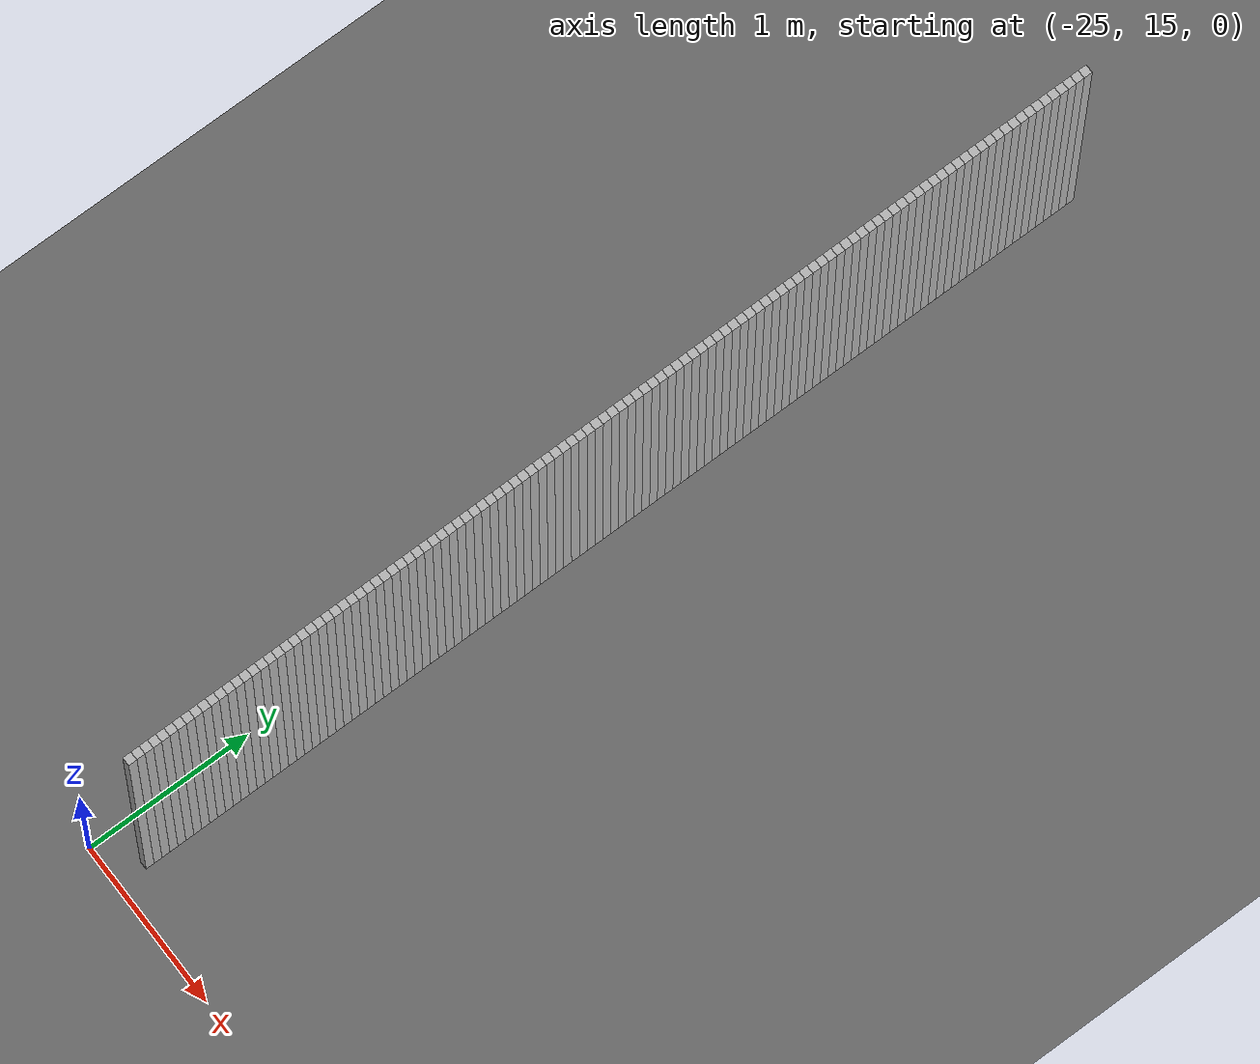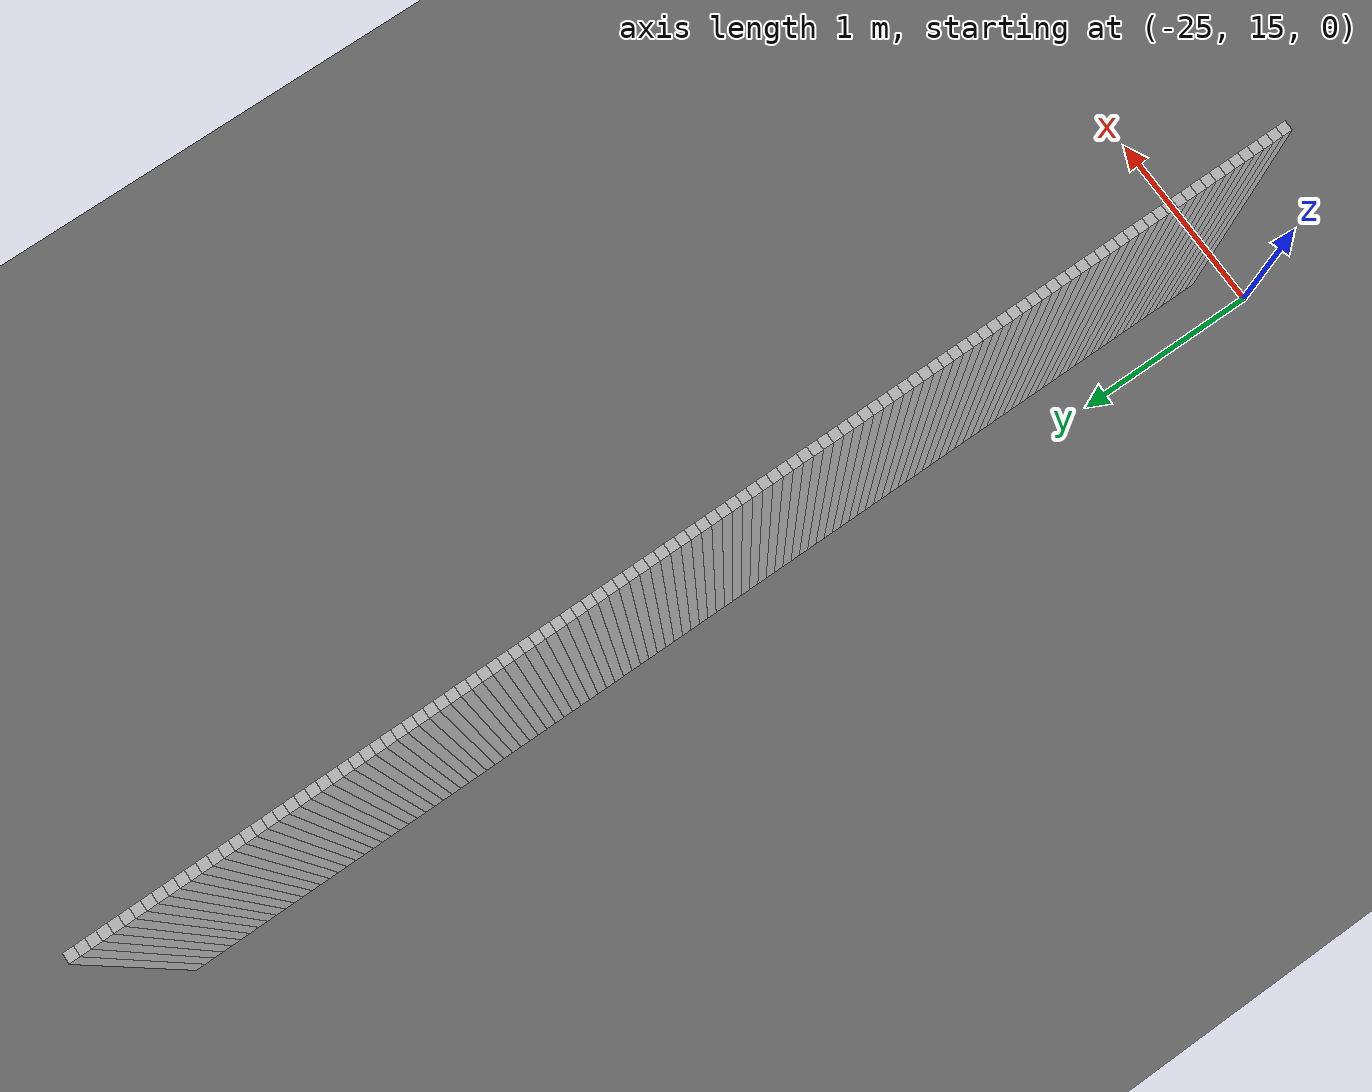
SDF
<sdf version="1.8">
 <world name="real_map">
  <model name="ground">
   <static>true</static>
   <link name="l">
    <collision name="c"><geometry><plane><normal>0 0 1</normal><size>100 100</size></plane></geometry></collision>
    <visual name="v">
     <geometry><plane><normal>0 0 1</normal><size>100 100</size></plane></geometry>
     <material><ambient>0.3 0.3 0.3 1</ambient><diffuse>0.4 0.4 0.4 1</diffuse></material>
    </visual>
   </link>
  </model>
  <model name="walls">
   <static>true</static>
   <link name="w1">
    <pose>-24.766 21.092 1.000 0 0 0</pose>
    <collision name="c"><geometry><box><size>0.050 0.050 2.000</size></box></geometry></collision>
    <visual name="v">
     <geometry><box><size>0.050 0.050 2.000</size></box></geometry>
     <material><ambient>0.7 0.7 0.7 1</ambient><diffuse>0.7 0.7 0.7 1</diffuse></material>
    </visual>
   </link>
   <link name="w3">
    <pose>-24.766 21.042 1.000 0 0 0</pose>
    <collision name="c"><geometry><box><size>0.050 0.050 2.000</size></box></geometry></collision>
    <visual name="v">
     <geometry><box><size>0.050 0.050 2.000</size></box></geometry>
     <material><ambient>0.7 0.7 0.7 1</ambient><diffuse>0.7 0.7 0.7 1</diffuse></material>
    </visual>
   </link>
   <link name="w5">
    <pose>-24.766 20.992 1.000 0 0 0</pose>
    <collision name="c"><geometry><box><size>0.050 0.050 2.000</size></box></geometry></collision>
    <visual name="v">
     <geometry><box><size>0.050 0.050 2.000</size></box></geometry>
     <material><ambient>0.7 0.7 0.7 1</ambient><diffuse>0.7 0.7 0.7 1</diffuse></material>
    </visual>
   </link>
   <link name="w7">
    <pose>-24.766 20.942 1.000 0 0 0</pose>
    <collision name="c"><geometry><box><size>0.050 0.050 2.000</size></box></geometry></collision>
    <visual name="v">
     <geometry><box><size>0.050 0.050 2.000</size></box></geometry>
     <material><ambient>0.7 0.7 0.7 1</ambient><diffuse>0.7 0.7 0.7 1</diffuse></material>
    </visual>
   </link>
   <link name="w9">
    <pose>-24.766 20.892 1.000 0 0 0</pose>
    <collision name="c"><geometry><box><size>0.050 0.050 2.000</size></box></geometry></collision>
    <visual name="v">
     <geometry><box><size>0.050 0.050 2.000</size></box></geometry>
     <material><ambient>0.7 0.7 0.7 1</ambient><diffuse>0.7 0.7 0.7 1</diffuse></material>
    </visual>
   </link>
   <link name="w11">
    <pose>-24.766 20.842 1.000 0 0 0</pose>
    <collision name="c"><geometry><box><size>0.050 0.050 2.000</size></box></geometry></collision>
    <visual name="v">
     <geometry><box><size>0.050 0.050 2.000</size></box></geometry>
     <material><ambient>0.7 0.7 0.7 1</ambient><diffuse>0.7 0.7 0.7 1</diffuse></material>
    </visual>
   </link>
   <link name="w13">
    <pose>-24.766 20.792 1.000 0 0 0</pose>
    <collision name="c"><geometry><box><size>0.050 0.050 2.000</size></box></geometry></collision>
    <visual name="v">
     <geometry><box><size>0.050 0.050 2.000</size></box></geometry>
     <material><ambient>0.7 0.7 0.7 1</ambient><diffuse>0.7 0.7 0.7 1</diffuse></material>
    </visual>
   </link>
   <link name="w15">
    <pose>-24.766 20.742 1.000 0 0 0</pose>
    <collision name="c"><geometry><box><size>0.050 0.050 2.000</size></box></geometry></collision>
    <visual name="v">
     <geometry><box><size>0.050 0.050 2.000</size></box></geometry>
     <material><ambient>0.7 0.7 0.7 1</ambient><diffuse>0.7 0.7 0.7 1</diffuse></material>
    </visual>
   </link>
   <link name="w17">
    <pose>-24.766 20.692 1.000 0 0 0</pose>
    <collision name="c"><geometry><box><size>0.050 0.050 2.000</size></box></geometry></collision>
    <visual name="v">
     <geometry><box><size>0.050 0.050 2.000</size></box></geometry>
     <material><ambient>0.7 0.7 0.7 1</ambient><diffuse>0.7 0.7 0.7 1</diffuse></material>
    </visual>
   </link>
   <link name="w19">
    <pose>-24.766 20.642 1.000 0 0 0</pose>
    <collision name="c"><geometry><box><size>0.050 0.050 2.000</size></box></geometry></collision>
    <visual name="v">
     <geometry><box><size>0.050 0.050 2.000</size></box></geometry>
     <material><ambient>0.7 0.7 0.7 1</ambient><diffuse>0.7 0.7 0.7 1</diffuse></material>
    </visual>
   </link>
   <link name="w21">
    <pose>-24.766 20.592 1.000 0 0 0</pose>
    <collision name="c"><geometry><box><size>0.050 0.050 2.000</size></box></geometry></collision>
    <visual name="v">
     <geometry><box><size>0.050 0.050 2.000</size></box></geometry>
     <material><ambient>0.7 0.7 0.7 1</ambient><diffuse>0.7 0.7 0.7 1</diffuse></material>
    </visual>
   </link>
   <link name="w23">
    <pose>-24.766 20.542 1.000 0 0 0</pose>
    <collision name="c"><geometry><box><size>0.050 0.050 2.000</size></box></geometry></collision>
    <visual name="v">
     <geometry><box><size>0.050 0.050 2.000</size></box></geometry>
     <material><ambient>0.7 0.7 0.7 1</ambient><diffuse>0.7 0.7 0.7 1</diffuse></material>
    </visual>
   </link>
   <link name="w25">
    <pose>-24.766 20.492 1.000 0 0 0</pose>
    <collision name="c"><geometry><box><size>0.050 0.050 2.000</size></box></geometry></collision>
    <visual name="v">
     <geometry><box><size>0.050 0.050 2.000</size></box></geometry>
     <material><ambient>0.7 0.7 0.7 1</ambient><diffuse>0.7 0.7 0.7 1</diffuse></material>
    </visual>
   </link>
   <link name="w27">
    <pose>-24.766 20.442 1.000 0 0 0</pose>
    <collision name="c"><geometry><box><size>0.050 0.050 2.000</size></box></geometry></collision>
    <visual name="v">
     <geometry><box><size>0.050 0.050 2.000</size></box></geometry>
     <material><ambient>0.7 0.7 0.7 1</ambient><diffuse>0.7 0.7 0.7 1</diffuse></material>
    </visual>
   </link>
   <link name="w29">
    <pose>-24.766 20.392 1.000 0 0 0</pose>
    <collision name="c"><geometry><box><size>0.050 0.050 2.000</size></box></geometry></collision>
    <visual name="v">
     <geometry><box><size>0.050 0.050 2.000</size></box></geometry>
     <material><ambient>0.7 0.7 0.7 1</ambient><diffuse>0.7 0.7 0.7 1</diffuse></material>
    </visual>
   </link>
   <link name="w31">
    <pose>-24.766 20.342 1.000 0 0 0</pose>
    <collision name="c"><geometry><box><size>0.050 0.050 2.000</size></box></geometry></collision>
    <visual name="v">
     <geometry><box><size>0.050 0.050 2.000</size></box></geometry>
     <material><ambient>0.7 0.7 0.7 1</ambient><diffuse>0.7 0.7 0.7 1</diffuse></material>
    </visual>
   </link>
   <link name="w33">
    <pose>-24.766 20.292 1.000 0 0 0</pose>
    <collision name="c"><geometry><box><size>0.050 0.050 2.000</size></box></geometry></collision>
    <visual name="v">
     <geometry><box><size>0.050 0.050 2.000</size></box></geometry>
     <material><ambient>0.7 0.7 0.7 1</ambient><diffuse>0.7 0.7 0.7 1</diffuse></material>
    </visual>
   </link>
   <link name="w35">
    <pose>-24.766 20.242 1.000 0 0 0</pose>
    <collision name="c"><geometry><box><size>0.050 0.050 2.000</size></box></geometry></collision>
    <visual name="v">
     <geometry><box><size>0.050 0.050 2.000</size></box></geometry>
     <material><ambient>0.7 0.7 0.7 1</ambient><diffuse>0.7 0.7 0.7 1</diffuse></material>
    </visual>
   </link>
   <link name="w37">
    <pose>-24.766 20.192 1.000 0 0 0</pose>
    <collision name="c"><geometry><box><size>0.050 0.050 2.000</size></box></geometry></collision>
    <visual name="v">
     <geometry><box><size>0.050 0.050 2.000</size></box></geometry>
     <material><ambient>0.7 0.7 0.7 1</ambient><diffuse>0.7 0.7 0.7 1</diffuse></material>
    </visual>
   </link>
   <link name="w39">
    <pose>-24.766 20.142 1.000 0 0 0</pose>
    <collision name="c"><geometry><box><size>0.050 0.050 2.000</size></box></geometry></collision>
    <visual name="v">
     <geometry><box><size>0.050 0.050 2.000</size></box></geometry>
     <material><ambient>0.7 0.7 0.7 1</ambient><diffuse>0.7 0.7 0.7 1</diffuse></material>
    </visual>
   </link>
   <link name="w41">
    <pose>-24.766 20.092 1.000 0 0 0</pose>
    <collision name="c"><geometry><box><size>0.050 0.050 2.000</size></box></geometry></collision>
    <visual name="v">
     <geometry><box><size>0.050 0.050 2.000</size></box></geometry>
     <material><ambient>0.7 0.7 0.7 1</ambient><diffuse>0.7 0.7 0.7 1</diffuse></material>
    </visual>
   </link>
   <link name="w43">
    <pose>-24.766 20.042 1.000 0 0 0</pose>
    <collision name="c"><geometry><box><size>0.050 0.050 2.000</size></box></geometry></collision>
    <visual name="v">
     <geometry><box><size>0.050 0.050 2.000</size></box></geometry>
     <material><ambient>0.7 0.7 0.7 1</ambient><diffuse>0.7 0.7 0.7 1</diffuse></material>
    </visual>
   </link>
   <link name="w45">
    <pose>-24.766 19.992 1.000 0 0 0</pose>
    <collision name="c"><geometry><box><size>0.050 0.050 2.000</size></box></geometry></collision>
    <visual name="v">
     <geometry><box><size>0.050 0.050 2.000</size></box></geometry>
     <material><ambient>0.7 0.7 0.7 1</ambient><diffuse>0.7 0.7 0.7 1</diffuse></material>
    </visual>
   </link>
   <link name="w47">
    <pose>-24.766 19.942 1.000 0 0 0</pose>
    <collision name="c"><geometry><box><size>0.050 0.050 2.000</size></box></geometry></collision>
    <visual name="v">
     <geometry><box><size>0.050 0.050 2.000</size></box></geometry>
     <material><ambient>0.7 0.7 0.7 1</ambient><diffuse>0.7 0.7 0.7 1</diffuse></material>
    </visual>
   </link>
   <link name="w49">
    <pose>-24.766 19.892 1.000 0 0 0</pose>
    <collision name="c"><geometry><box><size>0.050 0.050 2.000</size></box></geometry></collision>
    <visual name="v">
     <geometry><box><size>0.050 0.050 2.000</size></box></geometry>
     <material><ambient>0.7 0.7 0.7 1</ambient><diffuse>0.7 0.7 0.7 1</diffuse></material>
    </visual>
   </link>
   <link name="w51">
    <pose>-24.766 19.842 1.000 0 0 0</pose>
    <collision name="c"><geometry><box><size>0.050 0.050 2.000</size></box></geometry></collision>
    <visual name="v">
     <geometry><box><size>0.050 0.050 2.000</size></box></geometry>
     <material><ambient>0.7 0.7 0.7 1</ambient><diffuse>0.7 0.7 0.7 1</diffuse></material>
    </visual>
   </link>
   <link name="w53">
    <pose>-24.766 19.792 1.000 0 0 0</pose>
    <collision name="c"><geometry><box><size>0.050 0.050 2.000</size></box></geometry></collision>
    <visual name="v">
     <geometry><box><size>0.050 0.050 2.000</size></box></geometry>
     <material><ambient>0.7 0.7 0.7 1</ambient><diffuse>0.7 0.7 0.7 1</diffuse></material>
    </visual>
   </link>
   <link name="w55">
    <pose>-24.766 19.742 1.000 0 0 0</pose>
    <collision name="c"><geometry><box><size>0.050 0.050 2.000</size></box></geometry></collision>
    <visual name="v">
     <geometry><box><size>0.050 0.050 2.000</size></box></geometry>
     <material><ambient>0.7 0.7 0.7 1</ambient><diffuse>0.7 0.7 0.7 1</diffuse></material>
    </visual>
   </link>
   <link name="w57">
    <pose>-24.766 19.692 1.000 0 0 0</pose>
    <collision name="c"><geometry><box><size>0.050 0.050 2.000</size></box></geometry></collision>
    <visual name="v">
     <geometry><box><size>0.050 0.050 2.000</size></box></geometry>
     <material><ambient>0.7 0.7 0.7 1</ambient><diffuse>0.7 0.7 0.7 1</diffuse></material>
    </visual>
   </link>
   <link name="w59">
    <pose>-24.766 19.642 1.000 0 0 0</pose>
    <collision name="c"><geometry><box><size>0.050 0.050 2.000</size></box></geometry></collision>
    <visual name="v">
     <geometry><box><size>0.050 0.050 2.000</size></box></geometry>
     <material><ambient>0.7 0.7 0.7 1</ambient><diffuse>0.7 0.7 0.7 1</diffuse></material>
    </visual>
   </link>
   <link name="w61">
    <pose>-24.766 19.592 1.000 0 0 0</pose>
    <collision name="c"><geometry><box><size>0.050 0.050 2.000</size></box></geometry></collision>
    <visual name="v">
     <geometry><box><size>0.050 0.050 2.000</size></box></geometry>
     <material><ambient>0.7 0.7 0.7 1</ambient><diffuse>0.7 0.7 0.7 1</diffuse></material>
    </visual>
   </link>
   <link name="w63">
    <pose>-24.766 19.542 1.000 0 0 0</pose>
    <collision name="c"><geometry><box><size>0.050 0.050 2.000</size></box></geometry></collision>
    <visual name="v">
     <geometry><box><size>0.050 0.050 2.000</size></box></geometry>
     <material><ambient>0.7 0.7 0.7 1</ambient><diffuse>0.7 0.7 0.7 1</diffuse></material>
    </visual>
   </link>
   <link name="w65">
    <pose>-24.766 19.492 1.000 0 0 0</pose>
    <collision name="c"><geometry><box><size>0.050 0.050 2.000</size></box></geometry></collision>
    <visual name="v">
     <geometry><box><size>0.050 0.050 2.000</size></box></geometry>
     <material><ambient>0.7 0.7 0.7 1</ambient><diffuse>0.7 0.7 0.7 1</diffuse></material>
    </visual>
   </link>
   <link name="w67">
    <pose>-24.766 19.442 1.000 0 0 0</pose>
    <collision name="c"><geometry><box><size>0.050 0.050 2.000</size></box></geometry></collision>
    <visual name="v">
     <geometry><box><size>0.050 0.050 2.000</size></box></geometry>
     <material><ambient>0.7 0.7 0.7 1</ambient><diffuse>0.7 0.7 0.7 1</diffuse></material>
    </visual>
   </link>
   <link name="w69">
    <pose>-24.766 19.392 1.000 0 0 0</pose>
    <collision name="c"><geometry><box><size>0.050 0.050 2.000</size></box></geometry></collision>
    <visual name="v">
     <geometry><box><size>0.050 0.050 2.000</size></box></geometry>
     <material><ambient>0.7 0.7 0.7 1</ambient><diffuse>0.7 0.7 0.7 1</diffuse></material>
    </visual>
   </link>
   <link name="w71">
    <pose>-24.766 19.342 1.000 0 0 0</pose>
    <collision name="c"><geometry><box><size>0.050 0.050 2.000</size></box></geometry></collision>
    <visual name="v">
     <geometry><box><size>0.050 0.050 2.000</size></box></geometry>
     <material><ambient>0.7 0.7 0.7 1</ambient><diffuse>0.7 0.7 0.7 1</diffuse></material>
    </visual>
   </link>
   <link name="w73">
    <pose>-24.766 19.292 1.000 0 0 0</pose>
    <collision name="c"><geometry><box><size>0.050 0.050 2.000</size></box></geometry></collision>
    <visual name="v">
     <geometry><box><size>0.050 0.050 2.000</size></box></geometry>
     <material><ambient>0.7 0.7 0.7 1</ambient><diffuse>0.7 0.7 0.7 1</diffuse></material>
    </visual>
   </link>
   <link name="w75">
    <pose>-24.766 19.242 1.000 0 0 0</pose>
    <collision name="c"><geometry><box><size>0.050 0.050 2.000</size></box></geometry></collision>
    <visual name="v">
     <geometry><box><size>0.050 0.050 2.000</size></box></geometry>
     <material><ambient>0.7 0.7 0.7 1</ambient><diffuse>0.7 0.7 0.7 1</diffuse></material>
    </visual>
   </link>
   <link name="w77">
    <pose>-24.766 19.192 1.000 0 0 0</pose>
    <collision name="c"><geometry><box><size>0.050 0.050 2.000</size></box></geometry></collision>
    <visual name="v">
     <geometry><box><size>0.050 0.050 2.000</size></box></geometry>
     <material><ambient>0.7 0.7 0.7 1</ambient><diffuse>0.7 0.7 0.7 1</diffuse></material>
    </visual>
   </link>
   <link name="w79">
    <pose>-24.766 19.142 1.000 0 0 0</pose>
    <collision name="c"><geometry><box><size>0.050 0.050 2.000</size></box></geometry></collision>
    <visual name="v">
     <geometry><box><size>0.050 0.050 2.000</size></box></geometry>
     <material><ambient>0.7 0.7 0.7 1</ambient><diffuse>0.7 0.7 0.7 1</diffuse></material>
    </visual>
   </link>
   <link name="w81">
    <pose>-24.766 19.092 1.000 0 0 0</pose>
    <collision name="c"><geometry><box><size>0.050 0.050 2.000</size></box></geometry></collision>
    <visual name="v">
     <geometry><box><size>0.050 0.050 2.000</size></box></geometry>
     <material><ambient>0.7 0.7 0.7 1</ambient><diffuse>0.7 0.7 0.7 1</diffuse></material>
    </visual>
   </link>
   <link name="w83">
    <pose>-24.766 19.042 1.000 0 0 0</pose>
    <collision name="c"><geometry><box><size>0.050 0.050 2.000</size></box></geometry></collision>
    <visual name="v">
     <geometry><box><size>0.050 0.050 2.000</size></box></geometry>
     <material><ambient>0.7 0.7 0.7 1</ambient><diffuse>0.7 0.7 0.7 1</diffuse></material>
    </visual>
   </link>
   <link name="w85">
    <pose>-24.766 18.992 1.000 0 0 0</pose>
    <collision name="c"><geometry><box><size>0.050 0.050 2.000</size></box></geometry></collision>
    <visual name="v">
     <geometry><box><size>0.050 0.050 2.000</size></box></geometry>
     <material><ambient>0.7 0.7 0.7 1</ambient><diffuse>0.7 0.7 0.7 1</diffuse></material>
    </visual>
   </link>
   <link name="w87">
    <pose>-24.766 18.942 1.000 0 0 0</pose>
    <collision name="c"><geometry><box><size>0.050 0.050 2.000</size></box></geometry></collision>
    <visual name="v">
     <geometry><box><size>0.050 0.050 2.000</size></box></geometry>
     <material><ambient>0.7 0.7 0.7 1</ambient><diffuse>0.7 0.7 0.7 1</diffuse></material>
    </visual>
   </link>
   <link name="w89">
    <pose>-24.766 18.892 1.000 0 0 0</pose>
    <collision name="c"><geometry><box><size>0.050 0.050 2.000</size></box></geometry></collision>
    <visual name="v">
     <geometry><box><size>0.050 0.050 2.000</size></box></geometry>
     <material><ambient>0.7 0.7 0.7 1</ambient><diffuse>0.7 0.7 0.7 1</diffuse></material>
    </visual>
   </link>
   <link name="w91">
    <pose>-24.766 18.842 1.000 0 0 0</pose>
    <collision name="c"><geometry><box><size>0.050 0.050 2.000</size></box></geometry></collision>
    <visual name="v">
     <geometry><box><size>0.050 0.050 2.000</size></box></geometry>
     <material><ambient>0.7 0.7 0.7 1</ambient><diffuse>0.7 0.7 0.7 1</diffuse></material>
    </visual>
   </link>
   <link name="w93">
    <pose>-24.766 18.792 1.000 0 0 0</pose>
    <collision name="c"><geometry><box><size>0.050 0.050 2.000</size></box></geometry></collision>
    <visual name="v">
     <geometry><box><size>0.050 0.050 2.000</size></box></geometry>
     <material><ambient>0.7 0.7 0.7 1</ambient><diffuse>0.7 0.7 0.7 1</diffuse></material>
    </visual>
   </link>
   <link name="w95">
    <pose>-24.766 18.742 1.000 0 0 0</pose>
    <collision name="c"><geometry><box><size>0.050 0.050 2.000</size></box></geometry></collision>
    <visual name="v">
     <geometry><box><size>0.050 0.050 2.000</size></box></geometry>
     <material><ambient>0.7 0.7 0.7 1</ambient><diffuse>0.7 0.7 0.7 1</diffuse></material>
    </visual>
   </link>
   <link name="w97">
    <pose>-24.766 18.692 1.000 0 0 0</pose>
    <collision name="c"><geometry><box><size>0.050 0.050 2.000</size></box></geometry></collision>
    <visual name="v">
     <geometry><box><size>0.050 0.050 2.000</size></box></geometry>
     <material><ambient>0.7 0.7 0.7 1</ambient><diffuse>0.7 0.7 0.7 1</diffuse></material>
    </visual>
   </link>
   <link name="w99">
    <pose>-24.766 18.642 1.000 0 0 0</pose>
    <collision name="c"><geometry><box><size>0.050 0.050 2.000</size></box></geometry></collision>
    <visual name="v">
     <geometry><box><size>0.050 0.050 2.000</size></box></geometry>
     <material><ambient>0.7 0.7 0.7 1</ambient><diffuse>0.7 0.7 0.7 1</diffuse></material>
    </visual>
   </link>
   <link name="w101">
    <pose>-24.766 18.592 1.000 0 0 0</pose>
    <collision name="c"><geometry><box><size>0.050 0.050 2.000</size></box></geometry></collision>
    <visual name="v">
     <geometry><box><size>0.050 0.050 2.000</size></box></geometry>
     <material><ambient>0.7 0.7 0.7 1</ambient><diffuse>0.7 0.7 0.7 1</diffuse></material>
    </visual>
   </link>
   <link name="w103">
    <pose>-24.766 18.542 1.000 0 0 0</pose>
    <collision name="c"><geometry><box><size>0.050 0.050 2.000</size></box></geometry></collision>
    <visual name="v">
     <geometry><box><size>0.050 0.050 2.000</size></box></geometry>
     <material><ambient>0.7 0.7 0.7 1</ambient><diffuse>0.7 0.7 0.7 1</diffuse></material>
    </visual>
   </link>
   <link name="w105">
    <pose>-24.766 18.492 1.000 0 0 0</pose>
    <collision name="c"><geometry><box><size>0.050 0.050 2.000</size></box></geometry></collision>
    <visual name="v">
     <geometry><box><size>0.050 0.050 2.000</size></box></geometry>
     <material><ambient>0.7 0.7 0.7 1</ambient><diffuse>0.7 0.7 0.7 1</diffuse></material>
    </visual>
   </link>
   <link name="w107">
    <pose>-24.766 18.442 1.000 0 0 0</pose>
    <collision name="c"><geometry><box><size>0.050 0.050 2.000</size></box></geometry></collision>
    <visual name="v">
     <geometry><box><size>0.050 0.050 2.000</size></box></geometry>
     <material><ambient>0.7 0.7 0.7 1</ambient><diffuse>0.7 0.7 0.7 1</diffuse></material>
    </visual>
   </link>
   <link name="w109">
    <pose>-24.766 18.392 1.000 0 0 0</pose>
    <collision name="c"><geometry><box><size>0.050 0.050 2.000</size></box></geometry></collision>
    <visual name="v">
     <geometry><box><size>0.050 0.050 2.000</size></box></geometry>
     <material><ambient>0.7 0.7 0.7 1</ambient><diffuse>0.7 0.7 0.7 1</diffuse></material>
    </visual>
   </link>
   <link name="w111">
    <pose>-24.766 18.342 1.000 0 0 0</pose>
    <collision name="c"><geometry><box><size>0.050 0.050 2.000</size></box></geometry></collision>
    <visual name="v">
     <geometry><box><size>0.050 0.050 2.000</size></box></geometry>
     <material><ambient>0.7 0.7 0.7 1</ambient><diffuse>0.7 0.7 0.7 1</diffuse></material>
    </visual>
   </link>
   <link name="w113">
    <pose>-24.766 18.292 1.000 0 0 0</pose>
    <collision name="c"><geometry><box><size>0.050 0.050 2.000</size></box></geometry></collision>
    <visual name="v">
     <geometry><box><size>0.050 0.050 2.000</size></box></geometry>
     <material><ambient>0.7 0.7 0.7 1</ambient><diffuse>0.7 0.7 0.7 1</diffuse></material>
    </visual>
   </link>
   <link name="w115">
    <pose>-24.766 18.242 1.000 0 0 0</pose>
    <collision name="c"><geometry><box><size>0.050 0.050 2.000</size></box></geometry></collision>
    <visual name="v">
     <geometry><box><size>0.050 0.050 2.000</size></box></geometry>
     <material><ambient>0.7 0.7 0.7 1</ambient><diffuse>0.7 0.7 0.7 1</diffuse></material>
    </visual>
   </link>
   <link name="w117">
    <pose>-24.766 18.192 1.000 0 0 0</pose>
    <collision name="c"><geometry><box><size>0.050 0.050 2.000</size></box></geometry></collision>
    <visual name="v">
     <geometry><box><size>0.050 0.050 2.000</size></box></geometry>
     <material><ambient>0.7 0.7 0.7 1</ambient><diffuse>0.7 0.7 0.7 1</diffuse></material>
    </visual>
   </link>
   <link name="w119">
    <pose>-24.766 18.142 1.000 0 0 0</pose>
    <collision name="c"><geometry><box><size>0.050 0.050 2.000</size></box></geometry></collision>
    <visual name="v">
     <geometry><box><size>0.050 0.050 2.000</size></box></geometry>
     <material><ambient>0.7 0.7 0.7 1</ambient><diffuse>0.7 0.7 0.7 1</diffuse></material>
    </visual>
   </link>
   <link name="w121">
    <pose>-24.766 18.092 1.000 0 0 0</pose>
    <collision name="c"><geometry><box><size>0.050 0.050 2.000</size></box></geometry></collision>
    <visual name="v">
     <geometry><box><size>0.050 0.050 2.000</size></box></geometry>
     <material><ambient>0.7 0.7 0.7 1</ambient><diffuse>0.7 0.7 0.7 1</diffuse></material>
    </visual>
   </link>
   <link name="w123">
    <pose>-24.766 18.042 1.000 0 0 0</pose>
    <collision name="c"><geometry><box><size>0.050 0.050 2.000</size></box></geometry></collision>
    <visual name="v">
     <geometry><box><size>0.050 0.050 2.000</size></box></geometry>
     <material><ambient>0.7 0.7 0.7 1</ambient><diffuse>0.7 0.7 0.7 1</diffuse></material>
    </visual>
   </link>
   <link name="w125">
    <pose>-24.766 17.992 1.000 0 0 0</pose>
    <collision name="c"><geometry><box><size>0.050 0.050 2.000</size></box></geometry></collision>
    <visual name="v">
     <geometry><box><size>0.050 0.050 2.000</size></box></geometry>
     <material><ambient>0.7 0.7 0.7 1</ambient><diffuse>0.7 0.7 0.7 1</diffuse></material>
    </visual>
   </link>
   <link name="w127">
    <pose>-24.766 17.942 1.000 0 0 0</pose>
    <collision name="c"><geometry><box><size>0.050 0.050 2.000</size></box></geometry></collision>
    <visual name="v">
     <geometry><box><size>0.050 0.050 2.000</size></box></geometry>
     <material><ambient>0.7 0.7 0.7 1</ambient><diffuse>0.7 0.7 0.7 1</diffuse></material>
    </visual>
   </link>
   <link name="w129">
    <pose>-24.766 17.892 1.000 0 0 0</pose>
    <collision name="c"><geometry><box><size>0.050 0.050 2.000</size></box></geometry></collision>
    <visual name="v">
     <geometry><box><size>0.050 0.050 2.000</size></box></geometry>
     <material><ambient>0.7 0.7 0.7 1</ambient><diffuse>0.7 0.7 0.7 1</diffuse></material>
    </visual>
   </link>
   <link name="w131">
    <pose>-24.766 17.842 1.000 0 0 0</pose>
    <collision name="c"><geometry><box><size>0.050 0.050 2.000</size></box></geometry></collision>
    <visual name="v">
     <geometry><box><size>0.050 0.050 2.000</size></box></geometry>
     <material><ambient>0.7 0.7 0.7 1</ambient><diffuse>0.7 0.7 0.7 1</diffuse></material>
    </visual>
   </link>
   <link name="w133">
    <pose>-24.766 17.792 1.000 0 0 0</pose>
    <collision name="c"><geometry><box><size>0.050 0.050 2.000</size></box></geometry></collision>
    <visual name="v">
     <geometry><box><size>0.050 0.050 2.000</size></box></geometry>
     <material><ambient>0.7 0.7 0.7 1</ambient><diffuse>0.7 0.7 0.7 1</diffuse></material>
    </visual>
   </link>
   <link name="w135">
    <pose>-24.766 17.742 1.000 0 0 0</pose>
    <collision name="c"><geometry><box><size>0.050 0.050 2.000</size></box></geometry></collision>
    <visual name="v">
     <geometry><box><size>0.050 0.050 2.000</size></box></geometry>
     <material><ambient>0.7 0.7 0.7 1</ambient><diffuse>0.7 0.7 0.7 1</diffuse></material>
    </visual>
   </link>
   <link name="w137">
    <pose>-24.766 17.692 1.000 0 0 0</pose>
    <collision name="c"><geometry><box><size>0.050 0.050 2.000</size></box></geometry></collision>
    <visual name="v">
     <geometry><box><size>0.050 0.050 2.000</size></box></geometry>
     <material><ambient>0.7 0.7 0.7 1</ambient><diffuse>0.7 0.7 0.7 1</diffuse></material>
    </visual>
   </link>
   <link name="w139">
    <pose>-24.766 17.642 1.000 0 0 0</pose>
    <collision name="c"><geometry><box><size>0.050 0.050 2.000</size></box></geometry></collision>
    <visual name="v">
     <geometry><box><size>0.050 0.050 2.000</size></box></geometry>
     <material><ambient>0.7 0.7 0.7 1</ambient><diffuse>0.7 0.7 0.7 1</diffuse></material>
    </visual>
   </link>
   <link name="w141">
    <pose>-24.766 17.592 1.000 0 0 0</pose>
    <collision name="c"><geometry><box><size>0.050 0.050 2.000</size></box></geometry></collision>
    <visual name="v">
     <geometry><box><size>0.050 0.050 2.000</size></box></geometry>
     <material><ambient>0.7 0.7 0.7 1</ambient><diffuse>0.7 0.7 0.7 1</diffuse></material>
    </visual>
   </link>
   <link name="w143">
    <pose>-24.766 17.542 1.000 0 0 0</pose>
    <collision name="c"><geometry><box><size>0.050 0.050 2.000</size></box></geometry></collision>
    <visual name="v">
     <geometry><box><size>0.050 0.050 2.000</size></box></geometry>
     <material><ambient>0.7 0.7 0.7 1</ambient><diffuse>0.7 0.7 0.7 1</diffuse></material>
    </visual>
   </link>
   <link name="w145">
    <pose>-24.766 17.492 1.000 0 0 0</pose>
    <collision name="c"><geometry><box><size>0.050 0.050 2.000</size></box></geometry></collision>
    <visual name="v">
     <geometry><box><size>0.050 0.050 2.000</size></box></geometry>
     <material><ambient>0.7 0.7 0.7 1</ambient><diffuse>0.7 0.7 0.7 1</diffuse></material>
    </visual>
   </link>
   <link name="w147">
    <pose>-24.766 17.442 1.000 0 0 0</pose>
    <collision name="c"><geometry><box><size>0.050 0.050 2.000</size></box></geometry></collision>
    <visual name="v">
     <geometry><box><size>0.050 0.050 2.000</size></box></geometry>
     <material><ambient>0.7 0.7 0.7 1</ambient><diffuse>0.7 0.7 0.7 1</diffuse></material>
    </visual>
   </link>
   <link name="w149">
    <pose>-24.766 17.392 1.000 0 0 0</pose>
    <collision name="c"><geometry><box><size>0.050 0.050 2.000</size></box></geometry></collision>
    <visual name="v">
     <geometry><box><size>0.050 0.050 2.000</size></box></geometry>
     <material><ambient>0.7 0.7 0.7 1</ambient><diffuse>0.7 0.7 0.7 1</diffuse></material>
    </visual>
   </link>
   <link name="w151">
    <pose>-24.766 17.342 1.000 0 0 0</pose>
    <collision name="c"><geometry><box><size>0.050 0.050 2.000</size></box></geometry></collision>
    <visual name="v">
     <geometry><box><size>0.050 0.050 2.000</size></box></geometry>
     <material><ambient>0.7 0.7 0.7 1</ambient><diffuse>0.7 0.7 0.7 1</diffuse></material>
    </visual>
   </link>
   <link name="w153">
    <pose>-24.766 17.292 1.000 0 0 0</pose>
    <collision name="c"><geometry><box><size>0.050 0.050 2.000</size></box></geometry></collision>
    <visual name="v">
     <geometry><box><size>0.050 0.050 2.000</size></box></geometry>
     <material><ambient>0.7 0.7 0.7 1</ambient><diffuse>0.7 0.7 0.7 1</diffuse></material>
    </visual>
   </link>
   <link name="w155">
    <pose>-24.766 17.242 1.000 0 0 0</pose>
    <collision name="c"><geometry><box><size>0.050 0.050 2.000</size></box></geometry></collision>
    <visual name="v">
     <geometry><box><size>0.050 0.050 2.000</size></box></geometry>
     <material><ambient>0.7 0.7 0.7 1</ambient><diffuse>0.7 0.7 0.7 1</diffuse></material>
    </visual>
   </link>
   <link name="w157">
    <pose>-24.766 17.192 1.000 0 0 0</pose>
    <collision name="c"><geometry><box><size>0.050 0.050 2.000</size></box></geometry></collision>
    <visual name="v">
     <geometry><box><size>0.050 0.050 2.000</size></box></geometry>
     <material><ambient>0.7 0.7 0.7 1</ambient><diffuse>0.7 0.7 0.7 1</diffuse></material>
    </visual>
   </link>
   <link name="w159">
    <pose>-24.766 17.142 1.000 0 0 0</pose>
    <collision name="c"><geometry><box><size>0.050 0.050 2.000</size></box></geometry></collision>
    <visual name="v">
     <geometry><box><size>0.050 0.050 2.000</size></box></geometry>
     <material><ambient>0.7 0.7 0.7 1</ambient><diffuse>0.7 0.7 0.7 1</diffuse></material>
    </visual>
   </link>
   <link name="w161">
    <pose>-24.766 17.092 1.000 0 0 0</pose>
    <collision name="c"><geometry><box><size>0.050 0.050 2.000</size></box></geometry></collision>
    <visual name="v">
     <geometry><box><size>0.050 0.050 2.000</size></box></geometry>
     <material><ambient>0.7 0.7 0.7 1</ambient><diffuse>0.7 0.7 0.7 1</diffuse></material>
    </visual>
   </link>
   <link name="w163">
    <pose>-24.766 17.042 1.000 0 0 0</pose>
    <collision name="c"><geometry><box><size>0.050 0.050 2.000</size></box></geometry></collision>
    <visual name="v">
     <geometry><box><size>0.050 0.050 2.000</size></box></geometry>
     <material><ambient>0.7 0.7 0.7 1</ambient><diffuse>0.7 0.7 0.7 1</diffuse></material>
    </visual>
   </link>
   <link name="w165">
    <pose>-24.766 16.992 1.000 0 0 0</pose>
    <collision name="c"><geometry><box><size>0.050 0.050 2.000</size></box></geometry></collision>
    <visual name="v">
     <geometry><box><size>0.050 0.050 2.000</size></box></geometry>
     <material><ambient>0.7 0.7 0.7 1</ambient><diffuse>0.7 0.7 0.7 1</diffuse></material>
    </visual>
   </link>
   <link name="w167">
    <pose>-24.766 16.942 1.000 0 0 0</pose>
    <collision name="c"><geometry><box><size>0.050 0.050 2.000</size></box></geometry></collision>
    <visual name="v">
     <geometry><box><size>0.050 0.050 2.000</size></box></geometry>
     <material><ambient>0.7 0.7 0.7 1</ambient><diffuse>0.7 0.7 0.7 1</diffuse></material>
    </visual>
   </link>
   <link name="w169">
    <pose>-24.766 16.892 1.000 0 0 0</pose>
    <collision name="c"><geometry><box><size>0.050 0.050 2.000</size></box></geometry></collision>
    <visual name="v">
     <geometry><box><size>0.050 0.050 2.000</size></box></geometry>
     <material><ambient>0.7 0.7 0.7 1</ambient><diffuse>0.7 0.7 0.7 1</diffuse></material>
    </visual>
   </link>
   <link name="w171">
    <pose>-24.766 16.842 1.000 0 0 0</pose>
    <collision name="c"><geometry><box><size>0.050 0.050 2.000</size></box></geometry></collision>
    <visual name="v">
     <geometry><box><size>0.050 0.050 2.000</size></box></geometry>
     <material><ambient>0.7 0.7 0.7 1</ambient><diffuse>0.7 0.7 0.7 1</diffuse></material>
    </visual>
   </link>
   <link name="w173">
    <pose>-24.766 16.792 1.000 0 0 0</pose>
    <collision name="c"><geometry><box><size>0.050 0.050 2.000</size></box></geometry></collision>
    <visual name="v">
     <geometry><box><size>0.050 0.050 2.000</size></box></geometry>
     <material><ambient>0.7 0.7 0.7 1</ambient><diffuse>0.7 0.7 0.7 1</diffuse></material>
    </visual>
   </link>
   <link name="w175">
    <pose>-24.766 16.742 1.000 0 0 0</pose>
    <collision name="c"><geometry><box><size>0.050 0.050 2.000</size></box></geometry></collision>
    <visual name="v">
     <geometry><box><size>0.050 0.050 2.000</size></box></geometry>
     <material><ambient>0.7 0.7 0.7 1</ambient><diffuse>0.7 0.7 0.7 1</diffuse></material>
    </visual>
   </link>
   <link name="w177">
    <pose>-24.766 16.692 1.000 0 0 0</pose>
    <collision name="c"><geometry><box><size>0.050 0.050 2.000</size></box></geometry></collision>
    <visual name="v">
     <geometry><box><size>0.050 0.050 2.000</size></box></geometry>
     <material><ambient>0.7 0.7 0.7 1</ambient><diffuse>0.7 0.7 0.7 1</diffuse></material>
    </visual>
   </link>
   <link name="w179">
    <pose>-24.766 16.642 1.000 0 0 0</pose>
    <collision name="c"><geometry><box><size>0.050 0.050 2.000</size></box></geometry></collision>
    <visual name="v">
     <geometry><box><size>0.050 0.050 2.000</size></box></geometry>
     <material><ambient>0.7 0.7 0.7 1</ambient><diffuse>0.7 0.7 0.7 1</diffuse></material>
    </visual>
   </link>
   <link name="w181">
    <pose>-24.766 16.592 1.000 0 0 0</pose>
    <collision name="c"><geometry><box><size>0.050 0.050 2.000</size></box></geometry></collision>
    <visual name="v">
     <geometry><box><size>0.050 0.050 2.000</size></box></geometry>
     <material><ambient>0.7 0.7 0.7 1</ambient><diffuse>0.7 0.7 0.7 1</diffuse></material>
    </visual>
   </link>
   <link name="w183">
    <pose>-24.766 16.542 1.000 0 0 0</pose>
    <collision name="c"><geometry><box><size>0.050 0.050 2.000</size></box></geometry></collision>
    <visual name="v">
     <geometry><box><size>0.050 0.050 2.000</size></box></geometry>
     <material><ambient>0.7 0.7 0.7 1</ambient><diffuse>0.7 0.7 0.7 1</diffuse></material>
    </visual>
   </link>
   <link name="w185">
    <pose>-24.766 16.492 1.000 0 0 0</pose>
    <collision name="c"><geometry><box><size>0.050 0.050 2.000</size></box></geometry></collision>
    <visual name="v">
     <geometry><box><size>0.050 0.050 2.000</size></box></geometry>
     <material><ambient>0.7 0.7 0.7 1</ambient><diffuse>0.7 0.7 0.7 1</diffuse></material>
    </visual>
   </link>
   <link name="w187">
    <pose>-24.766 16.442 1.000 0 0 0</pose>
    <collision name="c"><geometry><box><size>0.050 0.050 2.000</size></box></geometry></collision>
    <visual name="v">
     <geometry><box><size>0.050 0.050 2.000</size></box></geometry>
     <material><ambient>0.7 0.7 0.7 1</ambient><diffuse>0.7 0.7 0.7 1</diffuse></material>
    </visual>
   </link>
   <link name="w189">
    <pose>-24.766 16.392 1.000 0 0 0</pose>
    <collision name="c"><geometry><box><size>0.050 0.050 2.000</size></box></geometry></collision>
    <visual name="v">
     <geometry><box><size>0.050 0.050 2.000</size></box></geometry>
     <material><ambient>0.7 0.7 0.7 1</ambient><diffuse>0.7 0.7 0.7 1</diffuse></material>
    </visual>
   </link>
   <link name="w191">
    <pose>-24.766 16.342 1.000 0 0 0</pose>
    <collision name="c"><geometry><box><size>0.050 0.050 2.000</size></box></geometry></collision>
    <visual name="v">
     <geometry><box><size>0.050 0.050 2.000</size></box></geometry>
     <material><ambient>0.7 0.7 0.7 1</ambient><diffuse>0.7 0.7 0.7 1</diffuse></material>
    </visual>
   </link>
   <link name="w193">
    <pose>-24.766 16.292 1.000 0 0 0</pose>
    <collision name="c"><geometry><box><size>0.050 0.050 2.000</size></box></geometry></collision>
    <visual name="v">
     <geometry><box><size>0.050 0.050 2.000</size></box></geometry>
     <material><ambient>0.7 0.7 0.7 1</ambient><diffuse>0.7 0.7 0.7 1</diffuse></material>
    </visual>
   </link>
   <link name="w195">
    <pose>-24.766 16.242 1.000 0 0 0</pose>
    <collision name="c"><geometry><box><size>0.050 0.050 2.000</size></box></geometry></collision>
    <visual name="v">
     <geometry><box><size>0.050 0.050 2.000</size></box></geometry>
     <material><ambient>0.7 0.7 0.7 1</ambient><diffuse>0.7 0.7 0.7 1</diffuse></material>
    </visual>
   </link>
   <link name="w197">
    <pose>-24.766 16.192 1.000 0 0 0</pose>
    <collision name="c"><geometry><box><size>0.050 0.050 2.000</size></box></geometry></collision>
    <visual name="v">
     <geometry><box><size>0.050 0.050 2.000</size></box></geometry>
     <material><ambient>0.7 0.7 0.7 1</ambient><diffuse>0.7 0.7 0.7 1</diffuse></material>
    </visual>
   </link>
   <link name="w199">
    <pose>-24.766 16.142 1.000 0 0 0</pose>
    <collision name="c"><geometry><box><size>0.050 0.050 2.000</size></box></geometry></collision>
    <visual name="v">
     <geometry><box><size>0.050 0.050 2.000</size></box></geometry>
     <material><ambient>0.7 0.7 0.7 1</ambient><diffuse>0.7 0.7 0.7 1</diffuse></material>
    </visual>
   </link>
   <link name="w201">
    <pose>-24.766 16.092 1.000 0 0 0</pose>
    <collision name="c"><geometry><box><size>0.050 0.050 2.000</size></box></geometry></collision>
    <visual name="v">
     <geometry><box><size>0.050 0.050 2.000</size></box></geometry>
     <material><ambient>0.7 0.7 0.7 1</ambient><diffuse>0.7 0.7 0.7 1</diffuse></material>
    </visual>
   </link>
   <link name="w203">
    <pose>-24.766 16.042 1.000 0 0 0</pose>
    <collision name="c"><geometry><box><size>0.050 0.050 2.000</size></box></geometry></collision>
    <visual name="v">
     <geometry><box><size>0.050 0.050 2.000</size></box></geometry>
     <material><ambient>0.7 0.7 0.7 1</ambient><diffuse>0.7 0.7 0.7 1</diffuse></material>
    </visual>
   </link>
   <link name="w205">
    <pose>-24.766 15.992 1.000 0 0 0</pose>
    <collision name="c"><geometry><box><size>0.050 0.050 2.000</size></box></geometry></collision>
    <visual name="v">
     <geometry><box><size>0.050 0.050 2.000</size></box></geometry>
     <material><ambient>0.7 0.7 0.7 1</ambient><diffuse>0.7 0.7 0.7 1</diffuse></material>
    </visual>
   </link>
   <link name="w207">
    <pose>-24.766 15.942 1.000 0 0 0</pose>
    <collision name="c"><geometry><box><size>0.050 0.050 2.000</size></box></geometry></collision>
    <visual name="v">
     <geometry><box><size>0.050 0.050 2.000</size></box></geometry>
     <material><ambient>0.7 0.7 0.7 1</ambient><diffuse>0.7 0.7 0.7 1</diffuse></material>
    </visual>
   </link>
   <link name="w209">
    <pose>-24.766 15.892 1.000 0 0 0</pose>
    <collision name="c"><geometry><box><size>0.050 0.050 2.000</size></box></geometry></collision>
    <visual name="v">
     <geometry><box><size>0.050 0.050 2.000</size></box></geometry>
     <material><ambient>0.7 0.7 0.7 1</ambient><diffuse>0.7 0.7 0.7 1</diffuse></material>
    </visual>
   </link>
   <link name="w211">
    <pose>-24.766 15.842 1.000 0 0 0</pose>
    <collision name="c"><geometry><box><size>0.050 0.050 2.000</size></box></geometry></collision>
    <visual name="v">
     <geometry><box><size>0.050 0.050 2.000</size></box></geometry>
     <material><ambient>0.7 0.7 0.7 1</ambient><diffuse>0.7 0.7 0.7 1</diffuse></material>
    </visual>
   </link>
   <link name="w213">
    <pose>-24.766 15.792 1.000 0 0 0</pose>
    <collision name="c"><geometry><box><size>0.050 0.050 2.000</size></box></geometry></collision>
    <visual name="v">
     <geometry><box><size>0.050 0.050 2.000</size></box></geometry>
     <material><ambient>0.7 0.7 0.7 1</ambient><diffuse>0.7 0.7 0.7 1</diffuse></material>
    </visual>
   </link>
   <link name="w215">
    <pose>-24.766 15.742 1.000 0 0 0</pose>
    <collision name="c"><geometry><box><size>0.050 0.050 2.000</size></box></geometry></collision>
    <visual name="v">
     <geometry><box><size>0.050 0.050 2.000</size></box></geometry>
     <material><ambient>0.7 0.7 0.7 1</ambient><diffuse>0.7 0.7 0.7 1</diffuse></material>
    </visual>
   </link>
   <link name="w217">
    <pose>-24.766 15.692 1.000 0 0 0</pose>
    <collision name="c"><geometry><box><size>0.050 0.050 2.000</size></box></geometry></collision>
    <visual name="v">
     <geometry><box><size>0.050 0.050 2.000</size></box></geometry>
     <material><ambient>0.7 0.7 0.7 1</ambient><diffuse>0.7 0.7 0.7 1</diffuse></material>
    </visual>
   </link>
   <link name="w219">
    <pose>-24.766 15.642 1.000 0 0 0</pose>
    <collision name="c"><geometry><box><size>0.050 0.050 2.000</size></box></geometry></collision>
    <visual name="v">
     <geometry><box><size>0.050 0.050 2.000</size></box></geometry>
     <material><ambient>0.7 0.7 0.7 1</ambient><diffuse>0.7 0.7 0.7 1</diffuse></material>
    </visual>
   </link>
   <link name="w221">
    <pose>-24.766 15.592 1.000 0 0 0</pose>
    <collision name="c"><geometry><box><size>0.050 0.050 2.000</size></box></geometry></collision>
    <visual name="v">
     <geometry><box><size>0.050 0.050 2.000</size></box></geometry>
     <material><ambient>0.7 0.7 0.7 1</ambient><diffuse>0.7 0.7 0.7 1</diffuse></material>
    </visual>
   </link>
   <link name="w223">
    <pose>-24.766 15.542 1.000 0 0 0</pose>
    <collision name="c"><geometry><box><size>0.050 0.050 2.000</size></box></geometry></collision>
    <visual name="v">
     <geometry><box><size>0.050 0.050 2.000</size></box></geometry>
     <material><ambient>0.7 0.7 0.7 1</ambient><diffuse>0.7 0.7 0.7 1</diffuse></material>
    </visual>
   </link>
   <link name="w225">
    <pose>-24.766 15.492 1.000 0 0 0</pose>
    <collision name="c"><geometry><box><size>0.050 0.050 2.000</size></box></geometry></collision>
    <visual name="v">
     <geometry><box><size>0.050 0.050 2.000</size></box></geometry>
     <material><ambient>0.7 0.7 0.7 1</ambient><diffuse>0.7 0.7 0.7 1</diffuse></material>
    </visual>
   </link>
   <link name="w227">
    <pose>-24.766 15.442 1.000 0 0 0</pose>
    <collision name="c"><geometry><box><size>0.050 0.050 2.000</size></box></geometry></collision>
    <visual name="v">
     <geometry><box><size>0.050 0.050 2.000</size></box></geometry>
     <material><ambient>0.7 0.7 0.7 1</ambient><diffuse>0.7 0.7 0.7 1</diffuse></material>
    </visual>
   </link>
   <link name="w229">
    <pose>-24.766 15.392 1.000 0 0 0</pose>
    <collision name="c"><geometry><box><size>0.050 0.050 2.000</size></box></geometry></collision>
    <visual name="v">
     <geometry><box><size>0.050 0.050 2.000</size></box></geometry>
     <material><ambient>0.7 0.7 0.7 1</ambient><diffuse>0.7 0.7 0.7 1</diffuse></material>
    </visual>
   </link>
   <link name="w231">
    <pose>-24.766 15.342 1.000 0 0 0</pose>
    <collision name="c"><geometry><box><size>0.050 0.050 2.000</size></box></geometry></collision>
    <visual name="v">
     <geometry><box><size>0.050 0.050 2.000</size></box></geometry>
     <material><ambient>0.7 0.7 0.7 1</ambient><diffuse>0.7 0.7 0.7 1</diffuse></material>
    </visual>
   </link>
   <link name="w233">
    <pose>-24.766 15.292 1.000 0 0 0</pose>
    <collision name="c"><geometry><box><size>0.050 0.050 2.000</size></box></geometry></collision>
    <visual name="v">
     <geometry><box><size>0.050 0.050 2.000</size></box></geometry>
     <material><ambient>0.7 0.7 0.7 1</ambient><diffuse>0.7 0.7 0.7 1</diffuse></material>
    </visual>
   </link>
   <link name="w235">
    <pose>-24.766 15.242 1.000 0 0 0</pose>
    <collision name="c"><geometry><box><size>0.050 0.050 2.000</size></box></geometry></collision>
    <visual name="v">
     <geometry><box><size>0.050 0.050 2.000</size></box></geometry>
     <material><ambient>0.7 0.7 0.7 1</ambient><diffuse>0.7 0.7 0.7 1</diffuse></material>
    </visual>
   </link>
   <link name="w237">
    <pose>-24.766 15.192 1.000 0 0 0</pose>
    <collision name="c"><geometry><box><size>0.050 0.050 2.000</size></box></geometry></collision>
    <visual name="v">
     <geometry><box><size>0.050 0.050 2.000</size></box></geometry>
     <material><ambient>0.7 0.7 0.7 1</ambient><diffuse>0.7 0.7 0.7 1</diffuse></material>
    </visual>
   </link>
  </model>
 </world>
</sdf>
